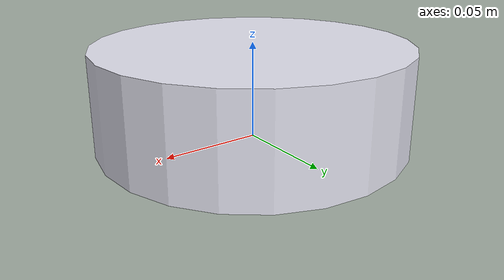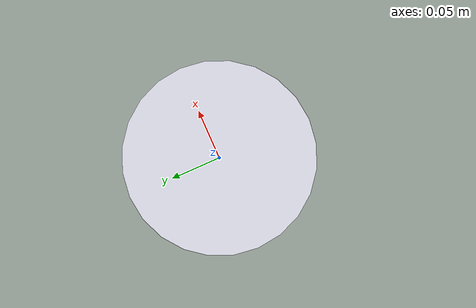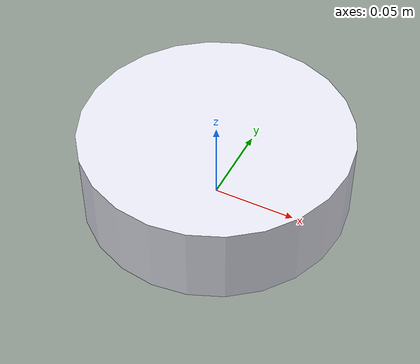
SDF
<?xml version="1.0"?>
<sdf version="1.6">
  <model name="bowl">
    <static>false</static>
    <link name="bowl_link">
      <inertial>
        <mass>0.2</mass>
        <inertia>
          <ixx>0.0003</ixx>
          <iyy>0.0003</iyy>
          <izz>0.0003</izz>
          <ixy>0.0</ixy>
          <ixz>0.0</ixz>
          <iyz>0.0</iyz>
        </inertia>
      </inertial>
      <collision name="bowl_collision">
        <pose>0 0 0.025 0 0 0</pose>
        <geometry>
          <cylinder>
            <radius>0.08</radius>
            <length>0.05</length>
          </cylinder>
        </geometry>
      </collision>
      <visual name="bowl_visual">
        <pose>0 0 0.025 0 0 0</pose>
        <geometry>
          <cylinder>
            <radius>0.08</radius>
            <length>0.05</length>
          </cylinder>
        </geometry>
        <material>
          <ambient>0.85 0.85 0.9 1.0</ambient>
          <diffuse>0.9 0.9 0.95 1.0</diffuse>
        </material>
      </visual>
    </link>
  </model>
</sdf>
